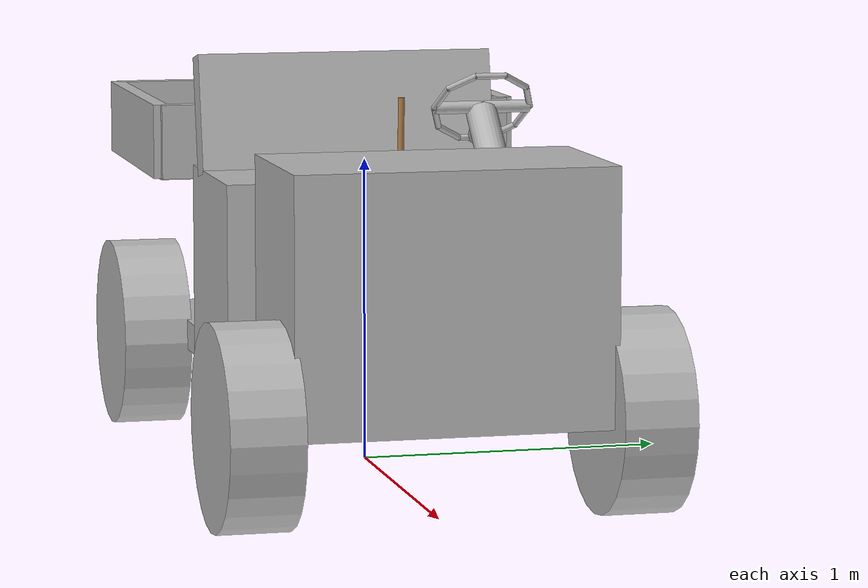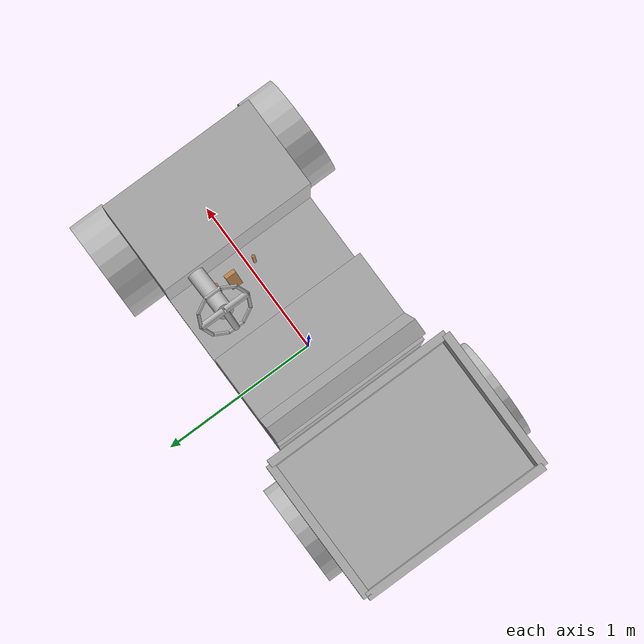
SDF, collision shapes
<?xml version="1.0"?>
<sdf version="1.3">
  <model name="polaris_ranger_ev">
    <link name="chassis">
      <inertial>
        <!-- subtracted wheel weights from dry weight of 771 kg -->
        <!-- http://www.polaris.com/en-us/ranger-utv/side-by-sides/ranger-ev/specifications -->
        <mass>720.0</mass>
        <inertia>
          <ixx>140</ixx>
          <ixy>0.0</ixy><iyy>550</iyy>
          <ixz>0.0</ixz><iyz>0.0</iyz><izz>550</izz>
        </inertia>
      </inertial>
      <visual name="visual">
        <!-- rotate mesh to get to X-forward -->
        <pose>0 0 0 0 0 -1.570796</pose>
        <geometry>
          <mesh>
            <uri>model://polaris_ranger_ev/meshes/polaris.dae</uri>
          </mesh>
        </geometry>
        <material>
          <script>
            <uri>model://polaris_ranger_ev/materials/scripts</uri>
            <uri>model://polaris_ranger_ev/materials/textures</uri>
            <name>Polaris/Diffuse</name>
          </script>
        </material>
      </visual>

      <visual name="marker">
       <pose>-0.9 0.0 1.5 0.0 1.57 0.0</pose>
         <geometry>
          <box>
            <size>0.265 0.265 0.001</size>
            <!-- SIZE OF THE MARKER + MARGIN -->
          </box>
        </geometry>
        <material>
          <script>
      <uri>model://materials/scripts</uri>
      <uri>model://materials/textures</uri>
            <name>Aruco/marker_35</name>
          </script>
        </material>
      </visual>

      <collision name="chassis_bottom">
        <pose>0.0 0.0 0.35 0.0 0.0 0.0</pose>
        <geometry>
          <box>
            <size>2.0 1.0 0.1</size>
          </box>
        </geometry>
      </collision>
      <collision name="cargo_bottom">
        <pose>-0.9 0.0 0.9 0.0 0.0 0.0</pose>
        <geometry>
          <box>
            <size>0.9 1.2 0.01</size>
          </box>
        </geometry>
      </collision>
      <collision name="cargo_front">
        <pose>-0.45 0.0 1.025 0.0 0.0 0.0</pose>
        <geometry>
          <box>
            <size>0.05 1.2 0.25</size>
          </box>
        </geometry>
      </collision>
      <collision name="cargo_back">
        <pose>-1.35 0.0 1.025 0.0 0.0 0.0</pose>
        <geometry>
          <box>
            <size>0.05 1.2 0.25</size>
          </box>
        </geometry>
      </collision>
      <collision name="cargo_left">
        <pose>-0.9 0.6 1.025 0.0 0.0 0.0</pose>
        <geometry>
          <box>
            <size>0.9 0.05 0.25</size>
          </box>
        </geometry>
      </collision>
      <collision name="cargo_right">
        <pose>-0.9 -0.6 1.025 0.0 0.0 0.0</pose>
        <geometry>
          <box>
            <size>0.9 0.05 0.25</size>
          </box>
        </geometry>
      </collision>
      <collision name="seat">
        <pose>-0.1 0.0 0.625 0.0 0.0 0.0</pose>
        <geometry>
          <box>
            <size>0.6 1.0 0.65</size>
          </box>
        </geometry>
      </collision>
      <collision name="seat_back">
        <pose>-0.3 0.0 1.125 0.0 -0.2 0.0</pose>
        <geometry>
          <box>
            <size>0.1 1.0 0.4</size>
          </box>
        </geometry>
      </collision>
      <collision name="engine">
        <pose>0.95 0.0 0.7 0.0 0.0 0.0</pose>
        <geometry>
          <box>
            <size>0.58 1.0 0.8</size>
          </box>
        </geometry>
      </collision>
      <collision name="steering_column">
        <pose>0.525 0.3 1.025 0.0 -0.8 0.0</pose>
        <geometry>
          <cylinder>
            <radius>0.05</radius>
            <length>0.45</length>
          </cylinder>
        </geometry>
      </collision>
   </link>
    <link name="rear_right_wheel">
      <pose>-0.85 -0.6 0.32 1.570796 0.0 0.0</pose>
      <inertial>
        <mass>12</mass><!-- estimated from http://www.rzrforums.net/wheels-tires/1729-tire-wheel-weights-most-sizes.html -->
        <inertia>
          <ixx>0.5</ixx>
          <ixy>0.0</ixy><iyy>0.5</iyy>
          <ixz>0.0</ixz><iyz>0.0</iyz><izz>1.0</izz>
        </inertia>
      </inertial>
      <collision name="collision">
        <geometry>
          <cylinder>
            <radius>0.32</radius>
            <length>0.23</length>
          </cylinder>
        </geometry>
        <surface>
          <friction>
            <ode>
              <mu>100000.0</mu>
              <mu2>100000.0</mu2>
              <slip1>0.0</slip1>
              <slip2>0.0</slip2>
            </ode>
          </friction>
        </surface>
      </collision>
    </link>
    <joint type="revolute" name="rear_right_wheel_joint">
      <pose>0.0 0.0 -0.1 0 0 0</pose>
      <child>rear_right_wheel</child>
      <parent>chassis</parent>
      <axis>
        <xyz>0 1 0</xyz>
      </axis>
      <physics><ode><limit>
        <cfm>0.000000</cfm>
        <erp>0.900000</erp>
      </limit></ode></physics>
    </joint>
    <link name="rear_left_wheel">
      <pose>-0.85 0.6 0.32 1.570796 0.0 0.0</pose>
      <inertial>
        <mass>12</mass><!-- estimated from http://www.rzrforums.net/wheels-tires/1729-tire-wheel-weights-most-sizes.html -->
        <inertia>
          <ixx>0.5</ixx>
          <ixy>0.0</ixy><iyy>0.5</iyy>
          <ixz>0.0</ixz><iyz>0.0</iyz><izz>1.0</izz>
        </inertia>
      </inertial>
      <collision name="collision">
        <geometry>
          <cylinder>
            <radius>0.32</radius>
            <length>0.23</length>
          </cylinder>
        </geometry>
        <surface>
          <friction>
            <ode>
              <mu>100000.0</mu>
              <mu2>100000.0</mu2>
              <slip1>0.0</slip1>
              <slip2>0.0</slip2>
            </ode>
          </friction>
        </surface>
      </collision>
    </link>
    <joint type="revolute" name="rear_left_wheel_joint">
      <child>rear_left_wheel</child>
      <parent>chassis</parent>
      <axis>
        <xyz>0 1 0</xyz>
      </axis>
      <physics><ode><limit>
        <cfm>0.000000</cfm>
        <erp>0.900000</erp>
      </limit></ode></physics>
    </joint>
    <link name="front_right_wheel">
      <pose>1.03 -0.6 0.32 1.570796 0.0 0.0</pose>
      <inertial>
        <mass>12</mass><!-- estimated from http://www.rzrforums.net/wheels-tires/1729-tire-wheel-weights-most-sizes.html -->
        <inertia>
          <ixx>0.5</ixx>
          <ixy>0.0</ixy><iyy>0.5</iyy>
          <ixz>0.0</ixz><iyz>0.0</iyz><izz>1.0</izz>
        </inertia>
      </inertial>
      <collision name="collision">
        <geometry>
          <cylinder>
            <radius>0.32</radius>
            <length>0.23</length>
          </cylinder>
        </geometry>
        <surface>
          <friction>
            <ode>
              <mu>100000.0</mu>
              <mu2>100000.0</mu2>
              <slip1>0.0</slip1>
              <slip2>0.0</slip2>
            </ode>
          </friction>
        </surface>
      </collision>
    </link>
    <link name="front_right_wheel_steering_block">
      <pose>1.03 -0.5 0.32 1.570796 0.0 0.0</pose>
      <inertial>
        <mass>1</mass>
        <inertia>
          <ixx>1.0</ixx>
          <ixy>0.0</ixy><iyy>1.0</iyy>
          <ixz>0.0</ixz><iyz>0.0</iyz><izz>1.0</izz>
        </inertia>
      </inertial>
      <collision name="collision">
        <geometry>
          <cylinder>
            <radius>0.05</radius>
            <length>0.01</length>
          </cylinder>
        </geometry>
      </collision>
    </link>
    <joint type="revolute" name="front_right_steering_joint">
      <child>front_right_wheel_steering_block</child>
      <parent>chassis</parent>
      <axis>
        <xyz>0 0 1</xyz>
        <limit>
          <lower>-1.0</lower>
          <upper>1.0</upper>
        </limit>
      </axis>
      <physics><ode><limit>
        <cfm>0.000000</cfm>
        <erp>0.900000</erp>
      </limit></ode></physics>
    </joint>
    <joint type="revolute" name="front_right_wheel_joint">
      <child>front_right_wheel</child>
      <parent>front_right_wheel_steering_block</parent>
      <axis>
        <xyz>0 1 0</xyz>
      </axis>
      <physics><ode><limit>
        <cfm>0.000000</cfm>
        <erp>0.900000</erp>
      </limit></ode></physics>
    </joint>
    <link name="front_left_wheel">
      <pose>1.03 0.6 0.32 1.570796 0.0 0.0</pose>
      <inertial>
        <mass>12</mass><!-- estimated from http://www.rzrforums.net/wheels-tires/1729-tire-wheel-weights-most-sizes.html -->
        <inertia>
          <ixx>0.5</ixx>
          <ixy>0.0</ixy><iyy>0.5</iyy>
          <ixz>0.0</ixz><iyz>0.0</iyz><izz>1.0</izz>
        </inertia>
      </inertial>
      <collision name="collision">
        <geometry>
          <cylinder>
            <radius>0.32</radius>
            <length>0.23</length>
          </cylinder>
        </geometry>
        <surface>
          <friction>
            <ode>
              <mu>100000.0</mu>
              <mu2>100000.0</mu2>
              <slip1>0.0</slip1>
              <slip2>0.0</slip2>
            </ode>
          </friction>
        </surface>
      </collision>
    </link>
    <link name="front_left_wheel_steering_block">
      <pose>1.03 0.5 0.32 1.570796 0.0 0.0</pose>
      <inertial>
        <mass>1</mass>
        <inertia>
          <ixx>1.0</ixx>
          <ixy>0.0</ixy><iyy>1.0</iyy>
          <ixz>0.0</ixz><iyz>0.0</iyz><izz>1.0</izz>
        </inertia>
      </inertial>
      <collision name="collision">
        <geometry>
          <cylinder>
            <radius>0.05</radius>
            <length>0.01</length>
          </cylinder>
        </geometry>
      </collision>
    </link>
    <joint type="revolute" name="front_left_steering_joint">
      <child>front_left_wheel_steering_block</child>
      <parent>chassis</parent>
      <axis>
        <xyz>0 0 1</xyz>
        <limit>
          <lower>-1.0</lower>
          <upper>1.0</upper>
        </limit>
      </axis>
      <physics><ode><limit>
        <cfm>0.000000</cfm>
        <erp>0.900000</erp>
      </limit></ode></physics>
    </joint>
    <joint type="revolute" name="front_left_wheel_joint">
      <child>front_left_wheel</child>
      <parent>front_left_wheel_steering_block</parent>
      <axis>
        <xyz>0 1 0</xyz>
      </axis>
      <physics><ode><limit>
        <cfm>0.000000</cfm>
        <erp>0.900000</erp>
      </limit></ode></physics>
    </joint>
    <!-- gas/brake pedals, steering wheel and hand brake -->
    <link name='gas_pedal'>
      <pose>0.53 0.14 0.56 0 -1.0 0</pose>
      <gravity>false</gravity>
      <inertial>
        <mass>0.1</mass>
        <pose>0 0 0 0 0 0</pose>
        <inertia>
          <ixx>0.01</ixx>
          <ixy>0</ixy>
          <ixz>0</ixz>
          <iyy>0.01</iyy>
          <iyz>0</iyz>
          <izz>0.01</izz>
        </inertia>
      </inertial>
      <collision name='gas_pedal_collision'>
        <geometry>
          <box>
            <size>0.120000 0.070000 0.030000</size>
          </box>
        </geometry>
      </collision>
      <visual name='gas_pedal_visual'>
        <geometry>
          <box>
            <size>0.120000 0.070000 0.030000</size>
          </box>
        </geometry>
        <material>
          <script>
            <uri>file://media/materials/scripts/gazebo.material</uri>
            <name>Gazebo/Wood</name>
          </script>
          <ambient>0.2 0.2 0.2 1</ambient>
          <diffuse>0.2 0.2 0.2 1</diffuse>
          <specular>0.2 0.2 0.2 1</specular>
          <emissive>0.5 0.5 0.5 1</emissive>
        </material>
      </visual>
    </link>

    <link name='brake_pedal'>
      <gravity>false</gravity>
      <pose>0.54 0.27 0.58 0 -1.0 0</pose>
      <inertial>
        <mass>0.1</mass>
        <pose>0 0 0 0 0 0</pose>
        <inertia>
          <ixx>0.01</ixx>
          <ixy>0</ixy>
          <ixz>0</ixz>
          <iyy>0.01</iyy>
          <iyz>0</iyz>
          <izz>0.01</izz>
        </inertia>
      </inertial>
      <collision name='brake_pedal_collision'>
        <geometry>
          <box>
            <size>0.06 0.08 0.03</size>
          </box>
        </geometry>
      </collision>
      <visual name='brake_pedal_visual'>
        <geometry>
          <box>
            <size>0.060000 0.080000 0.030000</size>
          </box>
        </geometry>
        <material>
          <script>
            <uri>file://media/materials/scripts/gazebo.material</uri>
            <name>Gazebo/Wood</name>
          </script>
          <ambient>0.2 0.2 0.2 1</ambient>
          <diffuse>0.2 0.2 0.2 1</diffuse>
          <specular>0.2 0.2 0.2 1</specular>
          <emissive>0.5 0.5 0.5 1</emissive>
        </material>
      </visual>
    </link>

    <link name='steering_wheel'>
      <pose>0.37 0.30 1.2  0 -0.8 0</pose>
      <inertial>
        <mass>1.0</mass>
        <pose>0 0 0 0 0 0</pose>
        <inertia>
          <ixx>0.1</ixx>
          <ixy>0</ixy>
          <ixz>0</ixz>
          <iyy>0.1</iyy>
          <iyz>0</iyz>
          <izz>1.0</izz>
        </inertia>
      </inertial>
      <collision name="steering_wheel_post_left">
        <pose>0.0 0.08 0.0  1.570796 0 0</pose>
        <geometry>
          <cylinder>
            <radius>0.02</radius>
            <length>0.15</length>
          </cylinder>
        </geometry>
      </collision>
      <collision name="steering_wheel_post_right">
        <pose>0.0 -0.08 0.0  1.570796 0 0</pose>
        <geometry>
          <cylinder>
            <radius>0.02</radius>
            <length>0.15</length>
          </cylinder>
        </geometry>
      </collision>
      <collision name="steering_wheel_post_middle">
        <pose>-0.08 0.0 0.0 0 1.570796 0</pose>
        <geometry>
          <cylinder>
            <radius>0.02</radius>
            <length>0.15</length>
          </cylinder>
        </geometry>
      </collision>
      <collision name="collision00">
        <pose>0.150000 0.000000 0  0 1.570796 1.570796</pose>
        <geometry><cylinder><length>0.105065778087</length><radius>0.01</radius></cylinder></geometry>
      </collision>
      <collision name="collision01">
        <pose>0.121353 0.088168 0  0 1.570796 2.199115</pose>
        <geometry><cylinder><length>0.105065778087</length><radius>0.01</radius></cylinder></geometry>
      </collision>
      <collision name="collision02">
        <pose>0.046353 0.142658 0  0 1.570796 2.827433</pose>
        <geometry><cylinder><length>0.105065778087</length><radius>0.01</radius></cylinder></geometry>
      </collision>
      <collision name="collision03">
       <pose>-0.046353 0.142658 0  0 1.570796 3.455752</pose>
        <geometry><cylinder><length>0.105065778087</length><radius>0.01</radius></cylinder></geometry>
      </collision>
      <collision name="collision04">
        <pose>-0.121353 0.088168 0  0 1.570796 4.084070</pose>
        <geometry><cylinder><length>0.105065778087</length><radius>0.01</radius></cylinder></geometry>
      </collision>
      <collision name="collision05">
        <pose>-0.150000 0.000000 0  0 1.570796 4.712389</pose>
        <geometry><cylinder><length>0.105065778087</length><radius>0.01</radius></cylinder></geometry>
      </collision>
      <collision name="collision06">
        <pose>-0.121353 -0.088168 0  0 1.570796 5.340708</pose>
        <geometry><cylinder><length>0.105065778087</length><radius>0.01</radius></cylinder></geometry>
      </collision>
      <collision name="collision07">
        <pose>-0.046353 -0.142658 0  0 1.570796 5.969026</pose>
        <geometry><cylinder><length>0.105065778087</length><radius>0.01</radius></cylinder></geometry>
      </collision>
      <collision name="collision08">
        <pose>0.046353 -0.142658 0  0 1.570796 6.597345</pose>
        <geometry><cylinder><length>0.105065778087</length><radius>0.01</radius></cylinder></geometry>
      </collision>
      <collision name="collision09">
        <pose>0.121353 -0.088168 0  0 1.570796 7.225663</pose>
        <geometry><cylinder><length>0.105065778087</length><radius>0.01</radius></cylinder></geometry>
      </collision>
      <velocity_decay>0.1</velocity_decay>
    </link>
    <link name='hand_brake'>
      <pose>0.50 0.00 1.05 0.0 3.2 0.0</pose>
      <inertial>
        <mass>1.0</mass>
        <pose>0 0 -0.15 0 0 0</pose>
        <inertia>
          <ixx>0.1</ixx>
          <ixy>0</ixy>
          <ixz>0</ixz>
          <iyy>0.1</iyy>
          <iyz>0</iyz>
          <izz>1.0</izz>
        </inertia>
      </inertial>
      <collision name="hand_brake_collision">
        <pose>0 0 -0.10 0 0 0</pose>
        <geometry>
          <cylinder>
            <radius>0.01</radius>
            <length>0.2</length>
          </cylinder>
        </geometry>
      </collision>
      <visual name="hand_brake_visual">
        <pose>0 0 -0.10 0 0 0</pose>
        <geometry>
          <cylinder>
            <radius>0.01</radius>
            <length>0.2</length>
          </cylinder>
        </geometry>
        <material>
          <script>
            <uri>file://media/materials/scripts/gazebo.material</uri>
            <name>Gazebo/Wood</name>
          </script>
        </material>
      </visual>
    </link>
    <joint name='gas_joint' type='prismatic'>
      <parent>chassis</parent>
      <child>gas_pedal</child>
      <axis>
        <xyz>1.000000 0.000000 -1.000000</xyz>
        <limit>
          <lower>0.00</lower>
          <upper>0.15</upper>
        </limit>
      </axis>
    </joint>
    <joint name='brake_joint' type='prismatic'>
      <parent>chassis</parent>
      <child>brake_pedal</child>
      <axis>
        <xyz>1.000000 0.000000 -0.600000</xyz>
        <limit>
          <lower>0.00</lower>
          <upper>0.15</upper>
        </limit>
      </axis>
    </joint>
    <joint name='steering_joint' type='revolute'>
      <pose>0 0 0 1.570796 -0.8 0.0</pose>
      <parent>chassis</parent>
      <child>steering_wheel</child>
      <axis>
        <xyz>-1 0 1.023</xyz>
        <limit>
          <lower>-7.853000</lower>
          <upper>7.853000</upper>
        </limit>
      </axis>
    </joint>
    <joint name='hand_brake_joint' type='revolute'>
      <parent>chassis</parent>
      <child>hand_brake</child>
      <axis>
        <xyz>0.0 -1.0 0.0</xyz>
        <limit>
          <lower>0</lower>
          <upper>0.6</upper>
        </limit>
      </axis>
    </joint>
  </model>
</sdf>
